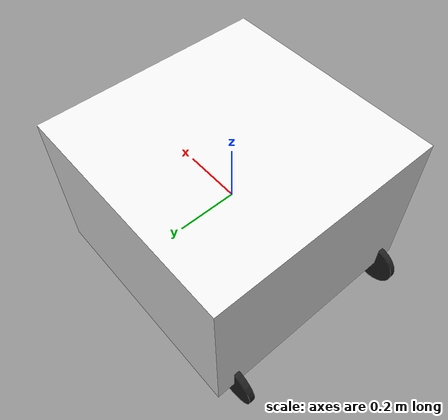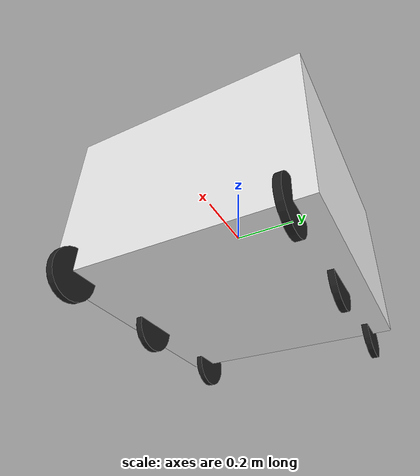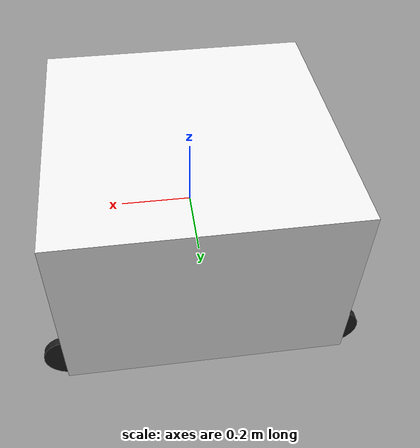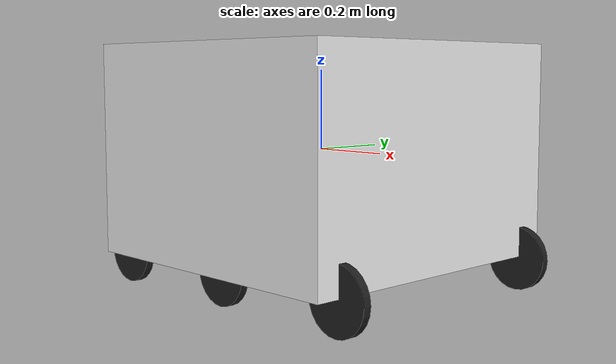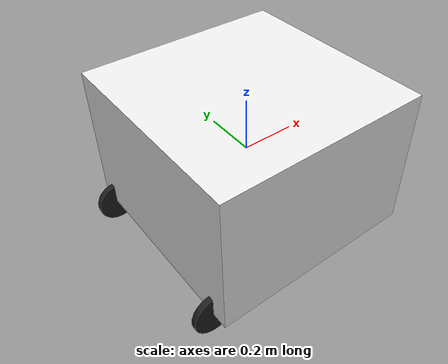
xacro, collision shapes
<?xml version="1.0"?>
<robot xmlns:xacro="http://www.ros.org/wiki/xacro" name="protobot">
    <!-- Includes files to build the robot -->
    <xacro:include filename="Base.xacro" />
    <xacro:include filename="Wheel.xacro" />
    <xacro:include filename="material.xacro" />

    <!-- Wheel Origin Values -->
    <xacro:property name="LeftWheelXOrigin" value="-.32"/>
    <xacro:property name="RightWheelXOrigin" value=".32"/>

    <xacro:property name="BackWheelYOrigin" value="-.38"/>
    <xacro:property name="MiddleWheelYOrigin" value="0"/>
    <xacro:property name="FrontWheelYOrigin" value=".38"/>

    <xacro:property name="wheelMass" value="0.7"/>

    <xacro:property name="baseMass" value="20"/>

    <!-- Base of the robot -->
    <xacro:base name="base" mass="${baseMass}"/>

    <!-- Left Side of the wheels -->
    <xacro:wheel name="wheel_Right_Front"  mass="${wheelMass}" parentLink="base_link" WheelXOrigin="${FrontWheelYOrigin}" WheelYOrigin="${LeftWheelXOrigin}"/>
    <xacro:wheel name="wheel_Right_Middle" mass="${wheelMass}" parentLink="base_link" WheelXOrigin="${MiddleWheelYOrigin}" WheelYOrigin="${LeftWheelXOrigin}"/>
    <xacro:wheel name="wheel_Right_Back" mass="${wheelMass}" parentLink="base_link" WheelXOrigin="${BackWheelYOrigin}" WheelYOrigin="${LeftWheelXOrigin}"/>

    <!-- Right Side of the wheels -->
    <xacro:wheel name="wheel_Left_Front" mass="${wheelMass}" parentLink="base_link" WheelXOrigin="${FrontWheelYOrigin}" WheelYOrigin="${RightWheelXOrigin}"/>
    <xacro:wheel name="wheel_Left_Middle" mass="${wheelMass}" parentLink="base_link" WheelXOrigin="${MiddleWheelYOrigin}" WheelYOrigin="${RightWheelXOrigin}"/>
    <xacro:wheel name="wheel_Left_Back" mass="${wheelMass}" parentLink="base_link" WheelXOrigin="${BackWheelYOrigin}" WheelYOrigin="${RightWheelXOrigin}"/>

    <!-- Camera -->

    <xacro:include filename="$(find gnc_gazebo)/sensors/_d435i.xacro" />
    <xacro:include filename="$(find gnc_gazebo)/sensors/_T265.xacro"/>
    <xacro:arg name="use_nominal_extrinsics" default="True" />

    <xacro:realsense_d435 sensor_name="d435i" parent_link="base_link" rate="60.0">
        <origin xyz="0.20 0 0.1805" rpy="0 0 0"/>
    </xacro:realsense_d435>

    <xacro:realsense_T265 sensor_name="t265" parent_link="base_link" rate="60.0">
        <origin rpy="0 0 0" xyz="0 0 0.15"/>
    </xacro:realsense_T265>

    <!-- IMU GPS -->

    <!-- Gazebo code for protobot -->
    <gazebo>
        <plugin filename="libgazebo_ros_control.so" name="gazebo_ros_control">
        <robotNamespace>gnc_robot</robotNamespace>
        </plugin>
    </gazebo>
    <gazebo>
        <plugin name="gazebo_ros_joint_state_publisher"
            filename="libgazebo_ros_joint_state_publisher.so">
            <update_rate>20</update_rate>
            <joint_name>wheel_Left_Front_joint</joint_name>
            <joint_name>wheel_Left_Middle_joint</joint_name>
            <joint_name>wheel_Left_Back_joint</joint_name>
            <joint_name>wheel_Right_Front_joint</joint_name>
            <joint_name>wheel_Right_Middle_joint</joint_name>
            <joint_name>wheel_Right_Back_joint</joint_name>
        </plugin>
    </gazebo>
    <gazebo>
        <plugin name="gazebo_ros_joint_pose_trajectory"
            filename="libgazebo_ros_joint_pose_trajectory.so">
            <update_rate>2</update_rate>
        </plugin>
    </gazebo>

    <joint name="teleop_camera_joint" type="fixed">
    <origin xyz="-0.181 0.19 0.695" rpy="0 0 0"/>
    <parent link="base_link"/>
    <child link="teleop_camera_link"/>
    </joint>

    <link name="teleop_camera_link"/>

    <joint name="arm_joint" type="fixed">
        <origin xyz="-0.113 -0.0174 0.235" rpy="0 0 0"/>
        <parent link="base_link"/>
        <child link="arm_link"/>
    </joint>

    <link name="arm_link">
        <visual>
            <origin xyz="0 0 0" rpy="0 0 0"/>
            <geometry>
                <mesh filename="package://gnc_gazebo/mesh/arm.stl"/>
            </geometry>
        </visual>
    </link>

    <gazebo reference="teleop_camera_link">
    <sensor type="camera" name="teleop_cam">
      <update_rate>30.0</update_rate>
      <camera name="teleop_cam">
        <horizontal_fov>1.3962634</horizontal_fov>
        <image>
          <width>800</width>
          <height>800</height>
          <format>R8G8B8</format>
        </image>
        <clip>
          <near>0.02</near>
          <far>300</far>
        </clip>
        <noise>
          <type>gaussian</type>
          <!-- Noise is sampled independently per pixel on each frame.
               That pixel's noise value is added to each of its color
               channels, which at that point lie in the range [0,1]. -->
          <mean>0.0</mean>
          <stddev>0.007</stddev>
        </noise>
      </camera>
      <plugin name="camera_controller" filename="libgazebo_ros_camera.so">
        <alwaysOn>true</alwaysOn>
        <updateRate>0.0</updateRate>
        <cameraName>teleop_cam</cameraName>
        <imageTopicName>image_raw</imageTopicName>
        <cameraInfoTopicName>camera_info</cameraInfoTopicName>
        <frameName>camera_link</frameName>
        <hackBaseline>0.07</hackBaseline>
        <distortionK1>0.0</distortionK1>
        <distortionK2>0.0</distortionK2>
        <distortionK3>0.0</distortionK3>
        <distortionT1>0.0</distortionT1>
        <distortionT2>0.0</distortionT2>
      </plugin>
    </sensor>
    </gazebo>

</robot>

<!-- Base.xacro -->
<robot xmlns:xacro="http://www.ros.org/wiki/xacro" name="base">
    <!-- This is values for the base of the robot -->
    <xacro:property name="baseLength" value="0.779" />
    <xacro:property name="baseWidth" value="0.780" />
    <xacro:property name="baseHeight" value="0.53" />

    <xacro:property name="originBaseX" value="0" />
    <xacro:property name="originBaseY" value="0" />
    <xacro:property name="originBaseZ" value="0" />

    <xacro:property name="baseColor" value="White" />

    <xacro:macro name="base" params="name mass">
        <link name="${name}_link">
            <visual>
                <origin xyz="${originBaseX} ${originBaseY} ${originBaseZ}" rpy="0 0 0"/>
                <geometry>
                    <mesh filename="package://gnc_description/mesh/chassis.stl"/>
                </geometry>
            </visual>
            <collision>
                <origin xyz="${originBaseX} ${originBaseY} ${originBaseZ}" rpy="0 0 0"/>
                <geometry>
                    <box size="${baseLength} ${baseWidth} ${baseHeight}" />
                </geometry>
            </collision>
            <inertial>
                <mass value="${mass}"/>
                <inertia  ixx="${mass*(baseLength*baseLength+baseHeight*baseHeight)/12}" ixy = "0" ixz = "0"
                iyy="${mass*(baseWidth*baseWidth+baseHeight*baseHeight)/12}" iyz = "0"
                izz="${mass*(baseWidth*baseWidth+baseHeight*baseHeight)/12}"/>
            </inertial>
        </link>

        <!-- Commands for the Base in Gazebo-->

        <gazebo reference="${name}_link">
            <material>Gazebo/White</material>
        </gazebo>
    </xacro:macro>
</robot>

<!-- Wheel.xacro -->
<robot xmlns:xacro="http://www.ros.org/wiki/xacro" name="wheel">

    <!-- This is values for the Wheels of the robot -->
    <xacro:property name="wheelLength" value="0.02" />
    <xacro:property name="wheelRadius" value="0.08" />

    <xacro:property name="originWheelX" value="0"/>
    <xacro:property name="originWheelY" value="0"/>
    <xacro:property name="originWheelZ" value="0"/>

    <xacro:property name="wheelColor" value="Black" />

    <xacro:macro name="wheel" params="name parentLink mass WheelXOrigin WheelYOrigin">
        <link name="${name}_link">
            <visual>
                <origin xyz="${originWheelX} ${originWheelY} ${originWheelZ}" rpy="0 0 0"/>
                <geometry>
                    <mesh filename="package://gnc_description/mesh/wheel.dae"/>
                </geometry>
            </visual>
            <collision>
                <origin xyz="${originWheelX} ${originWheelY} ${originWheelZ}" rpy="${pi/2} 0 0"/>
                <geometry>
                    <cylinder length="${wheelLength}" radius="${wheelRadius}"/>
                </geometry>
            </collision>
            <inertial>
                <mass value="${mass}"/>
                <inertia    ixx="${mass*(3*wheelRadius*wheelRadius+wheelLength*wheelLength)/12}" ixy = "0" ixz = "0"
                iyy="${mass*(3*wheelRadius*wheelRadius+wheelLength*wheelLength)/12}" iyz = "0"
                izz="${mass*wheelRadius*wheelRadius/2}"/>
            </inertial>
        </link>

        <joint name="${name}_joint" type="continuous">
            <origin xyz="${WheelXOrigin} ${WheelYOrigin} -0.27" rpy="0 ${pi/2} 0"/>
            <parent link="${parentLink}"/>
            <child link="${name}_link"/>
            <axis xyz="0 1 0" />
        </joint>

        <transmission name="${name}_trans">
            <type>transmission_interface/SimpleTransmission</type>
            <actuator name="motor1">
            <mechanicalReduction>1</mechanicalReduction>
            </actuator>
            <joint name="${name}_joint">
            <hardwareInterface>hardware_interface/VelocityJointInterface</hardwareInterface>
            </joint>
        </transmission>

        <!-- Commands for the Wheel in Gazebo-->

        <gazebo reference="${name}_link">
            <material>Gazebo/Black</material>
        </gazebo>
    </xacro:macro>
</robot>

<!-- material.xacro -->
<robot xmlns:xacro="http://www.ros.org/wiki/xacro">

    <material name="White">
        <color rgba="1 1 1 1"/>
    </material>

    <material name="Black">
        <color rgba="0 0 0 1"/>
    </material>

    <material name="Red">
        <color rgba="1 0 0 1"/>
    </material>

</robot>

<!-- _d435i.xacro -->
<robot name="sensor_d435i" xmlns:xacro="http://ros.org/wiki/xacro">
  <xacro:macro name="cylinder_inertia" params="m r h">
        <inertia    ixx="${m*(3*r*r+h*h)/12}" ixy = "0" ixz = "0"
                    iyy="${m*(3*r*r+h*h)/12}" iyz = "0"
                    izz="${m*r*r/2}" />
  </xacro:macro>

  <xacro:macro name="box_inertia" params="m x y z">
          <inertia  ixx="${m*(y*y+z*z)/12}" ixy = "0" ixz = "0"
                    iyy="${m*(x*x+z*z)/12}" iyz = "0"
                    izz="${m*(x*x+z*z)/12}" />
  </xacro:macro>

  <xacro:macro name="sphere_inertia" params="m r">
          <inertia  ixx="${2*m*r*r/5}" ixy = "0" ixz = "0"
                    iyy="${2*m*r*r/5}" iyz = "0"
                    izz="${2*m*r*r/5}" />
  </xacro:macro>

  <xacro:macro name="realsense_d435" params="sensor_name parent_link *origin rate">

    <xacro:property name="d435_cam_depth_to_left_ir_offset" value="0.0"/>
    <xacro:property name="d435_cam_depth_to_right_ir_offset" value="-0.050"/>
    <xacro:property name="d435_cam_depth_to_color_offset" value="0"/>
    <xacro:property name="d435_cam_width" value="0.090"/>
    <xacro:property name="d435_cam_height" value="0.025"/>
    <xacro:property name="d435_cam_depth" value="0.02505"/>
    <xacro:property name="d435_cam_mass" value="0.564"/>
    <xacro:property name="d435_cam_mount_from_center_offset" value="0.0149"/>
    <xacro:property name="d435_cam_depth_px" value="${d435_cam_mount_from_center_offset}"/>
    <xacro:property name="d435_cam_depth_py" value="0.0175"/>
    <xacro:property name="d435_cam_depth_pz" value="${d435_cam_height/2}"/>

    <!-- camera body, with origin at bottom screw mount -->
    <joint name="${sensor_name}_joint" type="fixed">
      <xacro:insert_block name="origin" />
      <parent link="${parent_link}"/>
      <child link="${sensor_name}_bottom_screw_frame" />
    </joint>
    <link name="${sensor_name}_bottom_screw_frame"/>

    <joint name="${sensor_name}_link_joint" type="fixed">
      <origin xyz="0 ${d435_cam_depth_py} ${d435_cam_depth_pz}" rpy="0 0 0"/>
      <parent link="${sensor_name}_bottom_screw_frame"/>
      <child link="${sensor_name}_link" />
    </joint>

    <link name="${sensor_name}_link">
      <visual>
        <origin xyz="${d435_cam_mount_from_center_offset} ${-d435_cam_depth_py} 0" rpy="${pi/2} 0 ${pi/2}"/>
        <geometry>
          <mesh filename="package://gnc_gazebo/mesh/d435.dae" />
        </geometry>
      </visual>
      <collision>
        <origin xyz="0 ${-d435_cam_depth_py} 0" rpy="0 0 0"/>
        <geometry>
          <box size="${d435_cam_depth} ${d435_cam_width} ${d435_cam_height}"/>
        </geometry>
      </collision>
      <inertial>
        <mass value="${d435_cam_mass}" />
        <origin xyz="0 ${-d435_cam_depth_py} 0" rpy="0 0 0"/>
        <xacro:box_inertia m="${d435_cam_mass}" x="${d435_cam_depth}" y="${d435_cam_width}" z="${d435_cam_height}"/>
      </inertial>
    </link>

    <!-- camera depth joints and links -->
    <joint name="${sensor_name}_depth_joint" type="fixed">
      <origin xyz="0 0 0" rpy="0 0 0"/>
      <parent link="${sensor_name}_link"/>
      <child link="${sensor_name}_depth_frame" />
    </joint>
    <link name="${sensor_name}_depth_frame"/>

    <joint name="${sensor_name}_depth_optical_joint" type="fixed">
      <origin xyz="0 0 0" rpy="${-pi/2} 0 ${-pi/2}" />
      <parent link="${sensor_name}_depth_frame" />
      <child link="${sensor_name}_depth_optical_frame" />
    </joint>
    <link name="${sensor_name}_depth_optical_frame"/>

    <!-- camera left IR joints and links -->
    <joint name="${sensor_name}_left_ir_joint" type="fixed">
      <origin xyz="0 ${d435_cam_depth_to_left_ir_offset} 0" rpy="0 0 0" />
      <parent link="${sensor_name}_depth_frame" />
      <child link="${sensor_name}_left_ir_frame" />
    </joint>
    <link name="${sensor_name}_left_ir_frame"/>

    <joint name="${sensor_name}_left_ir_optical_joint" type="fixed">
      <origin xyz="0 0 0" rpy="${-pi/2} 0 ${-pi/2}" />
      <parent link="${sensor_name}_left_ir_frame" />
      <child link="${sensor_name}_left_ir_optical_frame" />
    </joint>
    <link name="${sensor_name}_left_ir_optical_frame"/>

    <!-- camera right IR joints and links -->
    <joint name="${sensor_name}_right_ir_joint" type="fixed">
      <origin xyz="0 ${d435_cam_depth_to_right_ir_offset} 0" rpy="0 0 0" />
      <parent link="${sensor_name}_depth_frame" />
      <child link="${sensor_name}_right_ir_frame" />
    </joint>
    <link name="${sensor_name}_right_ir_frame"/>

    <joint name="${sensor_name}_right_ir_optical_joint" type="fixed">
      <origin xyz="0 0 0" rpy="${-pi/2} 0 ${-pi/2}" />
      <parent link="${sensor_name}_right_ir_frame" />
      <child link="${sensor_name}_right_ir_optical_frame" />
    </joint>
    <link name="${sensor_name}_right_ir_optical_frame"/>

    <!-- camera color joints and links -->
    <joint name="${sensor_name}_color_joint" type="fixed">
      <origin xyz="0 ${d435_cam_depth_to_color_offset} 0" rpy="0 0 0" />
      <parent link="${sensor_name}_depth_frame" />
      <child link="${sensor_name}_color_frame" />
    </joint>
    <link name="${sensor_name}_color_frame"/>

    <joint name="${sensor_name}_color_optical_joint" type="fixed">
      <origin xyz="0 0 0" rpy="${-pi/2} 0 ${-pi/2}" />
      <parent link="${sensor_name}_color_frame" />
      <child link="${sensor_name}_color_optical_frame" />
    </joint>
    <link name="${sensor_name}_color_optical_frame"/>

    <!-- gazebo plugin -->

    <xacro:property name="deg_to_rad" value="0.01745329251994329577" />

    <gazebo reference="${sensor_name}_link">
      <self_collide>0</self_collide>
      <enable_wind>0</enable_wind>
      <kinematic>0</kinematic>
      <gravity>1</gravity>
      <mu2>1</mu2>
      <fdir1>0 0 0</fdir1>
      <kp>1e+13</kp>
      <kd>1</kd>

      <sensor name="${sensor_name}_color" type="camera">
        <camera name="${sensor_name}">
          <horizontal_fov>${69.4*deg_to_rad}</horizontal_fov>
          <image>
            <width>1280</width>
            <height>720</height>
            <format>RGB_INT8</format>
          </image>
          <clip>
            <near>0.1</near>
            <far>100</far>
          </clip>
          <noise>
            <type>gaussian</type>
            <mean>0.0</mean>
            <stddev>0.007</stddev>
          </noise>
        </camera>
        <plugin name="camera_controller" filename="libgazebo_ros_camera.so">
          <alwaysOn>true</alwaysOn>
          <cameraName>${sensor_name}/color</cameraName>
          <imageTopicName>image_raw</imageTopicName>
          <cameraInfoTopicName>camera_info</cameraInfoTopicName>
          <frameName>${sensor_name}_color_optical_frame</frameName>
          <hackBaseline>0.07</hackBaseline>
          <distortionK1>-0.007419134024530649</distortionK1>
          <distortionK2>0.041209351271390915</distortionK2>
          <distortionK3>-0.03811917081475258</distortionK3>
          <distortionT1>0.006366158835589886</distortionT1>
          <distortionT2>0.0</distortionT2>
          <CxPrime>416.00531005859375</CxPrime>
          <Cx>16.00531005859375</Cx>
          <Cy>403.38909912109375</Cy>
        </plugin>
        <always_on>1</always_on>
        <update_rate>30</update_rate>
        <visualize>1</visualize>
      </sensor>
      <sensor name="${sensor_name}_ired1" type="camera">
        <camera name="${sensor_name}">
          <horizontal_fov>${85.2*deg_to_rad}</horizontal_fov>
          <image>
            <width>1280</width>
            <height>720</height>
            <format>L_INT8</format>
          </image>
          <clip>
            <near>0.1</near>
            <far>100</far>
          </clip>
          <noise>
            <type>gaussian</type>
            <mean>0.0</mean>
            <stddev>0.05</stddev>
          </noise>
        </camera>
        <plugin name="camera_controller" filename="libgazebo_ros_camera.so">
          <alwaysOn>true</alwaysOn>
          <cameraName>${sensor_name}/ired1</cameraName>
          <imageTopicName>image_raw</imageTopicName>
          <cameraInfoTopicName>camera_info</cameraInfoTopicName>
          <frameName>${sensor_name}_infrared1_optical_frame</frameName>
          <hackBaseline>0.07</hackBaseline>
          <distortionK1>-0.007419134024530649</distortionK1>
          <distortionK2>0.041209351271390915</distortionK2>
          <distortionK3>-0.03811917081475258</distortionK3>
          <distortionT1>0.006366158835589886</distortionT1>
          <distortionT2>0.0</distortionT2>
          <CxPrime>416.00531005859375</CxPrime>
          <Cx>16.00531005859375</Cx>
          <Cy>403.38909912109375</Cy>
        </plugin>
        <always_on>1</always_on>
        <update_rate>90</update_rate>
        <visualize>0</visualize>
      </sensor>
      <sensor name="${sensor_name}_ired2" type="camera">
        <camera name="${sensor_name}">
          <horizontal_fov>${85.2*deg_to_rad}</horizontal_fov>
          <image>
            <width>1280</width>
            <height>720</height>
            <format>L_INT8</format>
          </image>
          <clip>
            <near>0.1</near>
            <far>100</far>
          </clip>
          <noise>
            <type>gaussian</type>
            <mean>0.0</mean>
            <stddev>0.05</stddev>
          </noise>
        </camera>
        <plugin name="camera_controller" filename="libgazebo_ros_camera.so">
          <alwaysOn>true</alwaysOn>
          <cameraName>${sensor_name}/ired2</cameraName>
          <imageTopicName>image_raw</imageTopicName>
          <cameraInfoTopicName>camera_info</cameraInfoTopicName>
          <frameName>${sensor_name}_infrared2_optical_frame</frameName>
          <hackBaseline>0.07</hackBaseline>
          <distortionK1>-0.007419134024530649</distortionK1>
          <distortionK2>0.041209351271390915</distortionK2>
          <distortionK3>-0.03811917081475258</distortionK3>
          <distortionT1>0.006366158835589886</distortionT1>
          <distortionT2>0.0</distortionT2>
          <CxPrime>416.00531005859375</CxPrime>
          <Cx>16.00531005859375</Cx>
          <Cy>403.38909912109375</Cy>
        </plugin>
        <always_on>1</always_on>
        <update_rate>90</update_rate>
        <visualize>0</visualize>
      </sensor>
      <sensor name="${sensor_name}_depth" type="depth">
        <camera name="${sensor_name}">
          <horizontal_fov>${85.2*deg_to_rad}</horizontal_fov>
          <image>
            <width>1280</width>
            <height>720</height>
          </image>
          <clip>
            <near>0.1</near>
            <far>100</far>
          </clip>
          <noise>
            <type>gaussian</type>
            <mean>0.0</mean>
            <stddev>0.100</stddev>
          </noise>
        </camera>
        <plugin name="camera_controller" filename="libgazebo_ros_camera.so">
          <alwaysOn>true</alwaysOn>
          <updateRate>${rate}</updateRate>
          <cameraName>${sensor_name}/depth</cameraName>
          <imageTopicName>image_raw</imageTopicName>
          <cameraInfoTopicName>camera_info</cameraInfoTopicName>
          <frameName>${sensor_name}_depth_optical_frame</frameName>
          <hackBaseline>0.07</hackBaseline>
          <distortionK1>-0.007419134024530649</distortionK1>
          <distortionK2>0.041209351271390915</distortionK2>
          <distortionK3>-0.03811917081475258</distortionK3>
          <distortionT1>0.006366158835589886</distortionT1>
          <distortionT2>0.0</distortionT2>
          <CxPrime>416.00531005859375</CxPrime>
          <Cx>16.00531005859375</Cx>
          <Cy>403.38909912109375</Cy>
        </plugin>
        <always_on>1</always_on>
        <update_rate>90</update_rate>
        <visualize>0</visualize>
      </sensor>
    </gazebo>

    <gazebo>
      <plugin name="${sensor_name}" filename="librealsense_gazebo_plugin.so">
        <prefix>${sensor_name}_</prefix>
        <depthUpdateRate>${rate}</depthUpdateRate>
        <colorUpdateRate>${rate}</colorUpdateRate>
        <infraredUpdateRate>${rate}</infraredUpdateRate>
        <depthTopicName>depth/image_raw</depthTopicName>
        <depthCameraInfoTopicName>depth/camera_info</depthCameraInfoTopicName>
        <colorTopicName>color/image_raw</colorTopicName>
        <colorCameraInfoTopicName>color/camera_info</colorCameraInfoTopicName>
        <infrared1TopicName>infra1/image_raw</infrared1TopicName>
        <infrared1CameraInfoTopicName>infra1/camera_info</infrared1CameraInfoTopicName>
        <infrared2TopicName>infra2/image_raw</infrared2TopicName>
        <infrared2CameraInfoTopicName>infra2/camera_info</infrared2CameraInfoTopicName>
        <colorOpticalframeName>${sensor_name}_color_optical_frame</colorOpticalframeName>
        <depthOpticalframeName>${sensor_name}_depth_optical_frame</depthOpticalframeName>
        <infrared1OpticalframeName>${sensor_name}_infrared1_optical_frame</infrared1OpticalframeName>
        <infrared2OpticalframeName>${sensor_name}_infrared2_optical_frame</infrared2OpticalframeName>
        <rangeMinDepth>0.2</rangeMinDepth>
        <rangeMaxDepth>10.0</rangeMaxDepth>
        <pointCloud>true</pointCloud>
        <pointCloudTopicName>depth/color/points</pointCloudTopicName>
        <pointCloudCutoff>0.25</pointCloudCutoff>
        <pointCloudCutoffMax>9.0</pointCloudCutoffMax>
      </plugin>
    </gazebo>

  </xacro:macro>

</robot>

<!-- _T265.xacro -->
<robot xmlns:xacro="http://www.ros.org/wiki/xacro">

    <xacro:property name="deg_to_rad" value="0.01745329251994329577" />
  <xacro:macro name="T265_fisheye" params="sensor_name reference_frame topic rate">
    <gazebo reference="${reference_frame}">
      <sensor name="camera" type="wideanglecamera">
        <camera>
          <horizontal_fov>${69.4*deg_to_rad}</horizontal_fov>
          <image>
            <width>800</width>
            <height>848</height>
            <format>RGB_INT8</format>
          </image>
          <clip>
            <near>0.1</near>
            <far>100</far>
          </clip>
          <lens>
            <type>custom</type>
            <custom_function>
              <c1>1.05</c1>
              <c2>4</c2>
              <f>1.0</f>
              <fun>tan</fun>
            </custom_function>
            <scale_to_hfov>true</scale_to_hfov>
            <cutoff_angle>3.1415</cutoff_angle>
            <env_texture_size>512</env_texture_size>
          </lens>
          <always_on>true</always_on>
          <update_rate>30</update_rate>
        </camera>
        <plugin name="camera_controller" filename="libgazebo_ros_camera.so">
          <alwaysOn>true</alwaysOn>
          <updateRate>${rate}</updateRate>
          <cameraName>${sensor_name}/${topic}</cameraName>
          <imageTopicName>image_raw</imageTopicName>
          <cameraInfoTopicName>camera_info</cameraInfoTopicName>
          <frameName>${reference_frame}</frameName>
          <hackBaseline>0.07</hackBaseline>
          <distortionK1>-0.007419134024530649</distortionK1>
          <distortionK2>0.041209351271390915</distortionK2>
          <distortionK3>-0.03811917081475258</distortionK3>
          <distortionT1>0.006366158835589886</distortionT1>
          <distortionT2>0.0</distortionT2>
          <CxPrime>416.00531005859375</CxPrime>
          <Cx>16.00531005859375</Cx>
          <Cy>403.38909912109375</Cy>
        </plugin>
      </sensor>
    </gazebo>
  </xacro:macro>

  <!-- INTEL REALSENSE T265 -->

  <xacro:macro name="realsense_T265" params="sensor_name parent_link rate *origin">

    <joint name="${sensor_name}_odom_frame_joint" type="fixed">
        <parent link="${parent_link}"/>
        <child link="${sensor_name}_odom_frame"/>
        <xacro:insert_block name="origin"/>
    </joint>

    <joint name="${sensor_name}_pose_frame_joint" type="fixed">
        <parent link="${sensor_name}_odom_frame"/>
        <child link="${sensor_name}_pose_frame"/>
        <origin rpy="0 0 0" xyz="0 0 0"/> <!-- check on real hw -->
    </joint>
    <link name="${sensor_name}_odom_frame"/>

    <link name="${sensor_name}_pose_frame">
        <visual>
            <origin rpy="1.57 0 1.57" xyz="0 0 0"/>
            <geometry>
                <mesh filename="package://gnc_gazebo/mesh/realsense_t265.stl" scale="0.001 0.001 0.001"/>
            </geometry>
        </visual>
        <collision>
            <geometry>
                <box size="0.013 0.108 0.024"/>
            </geometry>
        </collision>
        <inertial>
            <mass value="0.055"/>
            <origin rpy="0 0 0" xyz="0 0 0"/>
            <inertia ixx="9.108e-05"
                     ixy="0"
                     ixz="0"
                     iyy="2.51e-06"
                     iyz="0"
                     izz="8.931e-05"/>
        </inertial>
    </link>

    <joint name="${sensor_name}_joint" type="fixed">
        <parent link="${sensor_name}_pose_frame"/>
        <child link="${sensor_name}_link"/>
        <origin rpy="0 0 0" xyz="0 0 0"/> <!-- check on real hw -->
    </joint>
    <link name="${sensor_name}_link"/>

    <joint name="${sensor_name}_fisheye1_joint" type="fixed">
        <parent link="${sensor_name}_link"/>
        <child link="${sensor_name}_fisheye1_frame"/>
        <origin rpy="0 0 0" xyz="0 0.042 0"/>
    </joint>
    <link name="${sensor_name}_fisheye1_frame"/>

    <joint name="${sensor_name}_fisheye1_optical_joint" type="fixed">
        <parent link="${sensor_name}_fisheye1_frame"/>
        <child link="${sensor_name}_fisheye1_optical_frame"/>
        <origin rpy="0 0 0" xyz="0.01 0 0"/>
    </joint>
    <link name="${sensor_name}_fisheye1_optical_frame"/>
    <xacro:T265_fisheye
      sensor_name="${sensor_name}"
      reference_frame="${sensor_name}_fisheye1_optical_frame"
      topic="fisheye1"
      rate="${rate}">
    </xacro:T265_fisheye>

    <joint name="${sensor_name}_fisheye2_joint" type="fixed">
        <parent link="${sensor_name}_link"/>
        <child link="${sensor_name}_fisheye2_frame"/>
        <origin rpy="0 0 0" xyz="0 -0.022 0"/>
    </joint>
    <link name="${sensor_name}_fisheye2_frame"/>

    <joint name="${sensor_name}_fisheye2_optical_joint" type="fixed">
        <parent link="${sensor_name}_fisheye2_frame"/>
        <child link="${sensor_name}_fisheye2_optical_frame"/>
        <origin rpy="0 0 0" xyz="0.01 0 0"/>
    </joint>
    <link name="${sensor_name}_fisheye2_optical_frame"/>
    <xacro:T265_fisheye
      sensor_name="${sensor_name}"
      reference_frame="${sensor_name}_fisheye2_optical_frame"
      topic="fisheye2"
      rate="${rate}">
    </xacro:T265_fisheye>

    <joint name="${sensor_name}_gyro_joint" type="fixed">
        <parent link="${sensor_name}_link"/>
        <child link="${sensor_name}_gyro_frame"/>
        <origin rpy="0 0 0" xyz="0 0 0"/> <!-- check on real hw -->
    </joint>
    <link name="${sensor_name}_gyro_frame"/>

    <gazebo reference="${sensor_name}_gyro_frame">
        <gravity>true</gravity>
        <sensor name="${sensor_name}_imu" type="imu">
            <always_on>true</always_on>
            <update_rate>${rate}</update_rate>
            <visualize>false</visualize>
            <plugin filename="libgazebo_ros_imu_sensor.so" name="imu_plugin">
                <topicName>${sensor_name}/gyro/sample</topicName>
                <bodyName>${sensor_name}_pose_frame</bodyName>
                <updateRateHZ>${rate}</updateRateHZ>
                <gaussianNoise>0.000001</gaussianNoise>
                <xyzOffset>0 0 0</xyzOffset>
                <rpyOffset>0 0 0</rpyOffset>
                <frameName>${sensor_name}_link</frameName>
            </plugin>
        </sensor>
    </gazebo>

    <joint name="${sensor_name}_accel_joint" type="fixed">
        <parent link="${sensor_name}_link"/>
        <child link="${sensor_name}_accel_frame"/>
        <origin rpy="0 0 0" xyz="0 0 0"/> <!-- check on real hw -->
    </joint>
    <link name="${sensor_name}_accel_frame"/> <!-- dummy -->

    <gazebo> <!-- odometry -->
        <plugin name="p3d_base_controller" filename="libgazebo_ros_p3d.so">
            <alwaysOn>true</alwaysOn>
            <updateRate>${rate}</updateRate>
            <bodyName>${sensor_name}_odom_frame</bodyName>
            <topicName>${sensor_name}/odom/sample</topicName>
            <gaussianNoise>0.001</gaussianNoise>
            <frameName>world</frameName>
            <xyzOffsets>0 0 0</xyzOffsets>
            <rpyOffsets>0 0 0</rpyOffsets>
        </plugin>
    </gazebo>

  </xacro:macro>

</robot>
